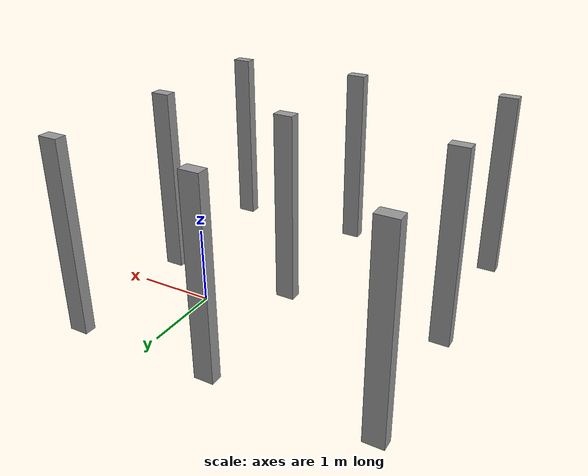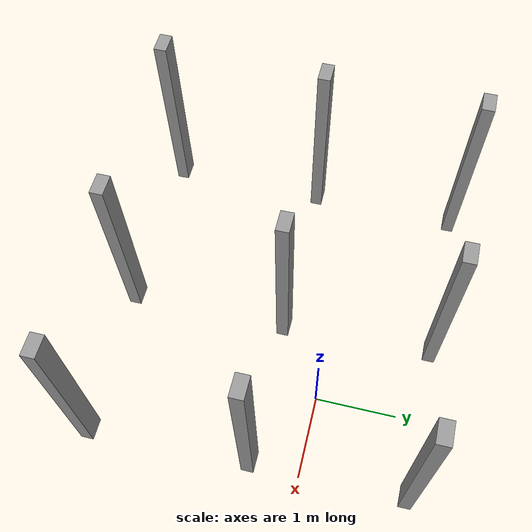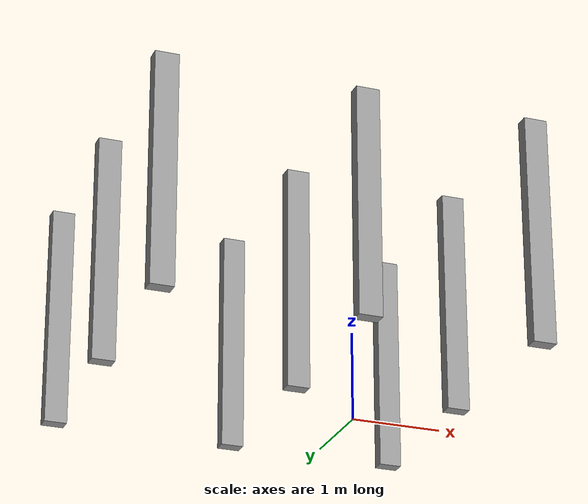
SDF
<?xml version='1.0'?>
<sdf version='1.7'>
  <model name='formation_with_obstacles'>
    <pose>-1 -0.665 0 0 -0 0</pose>
    <link name='Wall_0'>
      <collision name='Wall_0_Collision'>
        <geometry>
          <box>
            <size>0.25 0.15 2.5</size>
          </box>
        </geometry>
        <pose>0 0 1.25 0 -0 0</pose>
      </collision>
      <visual name='Wall_0_Visual'>
        <pose>0 0 1.25 0 -0 0</pose>
        <geometry>
          <box>
            <size>0.25 0.15 2.5</size>
          </box>
        </geometry>
        <material>
          <script>
            <uri>file://media/materials/scripts/gazebo.material</uri>
            <name>Gazebo/Grey</name>
          </script>
          <ambient>1 1 1 1</ambient>
        </material>
        <meta>
          <layer>0</layer>
        </meta>
      </visual>
      <pose>-1.99 0.045 0 0 -0 0</pose>
    </link>
    <link name='Wall_10'>
      <collision name='Wall_10_Collision'>
        <geometry>
          <box>
            <size>0.25 0.15 2.5</size>
          </box>
        </geometry>
        <pose>0 0 1.25 0 -0 0</pose>
      </collision>
      <visual name='Wall_10_Visual'>
        <pose>0 0 1.25 0 -0 0</pose>
        <geometry>
          <box>
            <size>0.25 0.15 2.5</size>
          </box>
        </geometry>
        <material>
          <script>
            <uri>file://media/materials/scripts/gazebo.material</uri>
            <name>Gazebo/Grey</name>
          </script>
          <ambient>1 1 1 1</ambient>
        </material>
        <meta>
          <layer>0</layer>
        </meta>
      </visual>
      <pose>2 -1.915 0 0 -0 0</pose>
    </link>
    <link name='Wall_12'>
      <collision name='Wall_12_Collision'>
        <geometry>
          <box>
            <size>0.25 0.15 2.5</size>
          </box>
        </geometry>
        <pose>0 0 1.25 0 -0 0</pose>
      </collision>
      <visual name='Wall_12_Visual'>
        <pose>0 0 1.25 0 -0 0</pose>
        <geometry>
          <box>
            <size>0.25 0.15 2.5</size>
          </box>
        </geometry>
        <material>
          <script>
            <uri>file://media/materials/scripts/gazebo.material</uri>
            <name>Gazebo/Grey</name>
          </script>
          <ambient>1 1 1 1</ambient>
        </material>
        <meta>
          <layer>0</layer>
        </meta>
      </visual>
      <pose>-1.97 1.925 0 0 -0 0</pose>
    </link>
    <link name='Wall_14'>
      <collision name='Wall_14_Collision'>
        <geometry>
          <box>
            <size>0.25 0.15 2.5</size>
          </box>
        </geometry>
        <pose>0 0 1.25 0 -0 0</pose>
      </collision>
      <visual name='Wall_14_Visual'>
        <pose>0 0 1.25 0 -0 0</pose>
        <geometry>
          <box>
            <size>0.25 0.15 2.5</size>
          </box>
        </geometry>
        <material>
          <script>
            <uri>file://media/materials/scripts/gazebo.material</uri>
            <name>Gazebo/Grey</name>
          </script>
          <ambient>1 1 1 1</ambient>
        </material>
        <meta>
          <layer>0</layer>
        </meta>
      </visual>
      <pose>0.05 1.945 0 0 -0 0</pose>
    </link>
    <link name='Wall_16'>
      <collision name='Wall_16_Collision'>
        <geometry>
          <box>
            <size>0.25 0.15 2.5</size>
          </box>
        </geometry>
        <pose>0 0 1.25 0 -0 0</pose>
      </collision>
      <visual name='Wall_16_Visual'>
        <pose>0 0 1.25 0 -0 0</pose>
        <geometry>
          <box>
            <size>0.25 0.15 2.5</size>
          </box>
        </geometry>
        <material>
          <script>
            <uri>file://media/materials/scripts/gazebo.material</uri>
            <name>Gazebo/Grey</name>
          </script>
          <ambient>1 1 1 1</ambient>
        </material>
        <meta>
          <layer>0</layer>
        </meta>
      </visual>
      <pose>1.93 1.935 0 0 -0 0</pose>
    </link>
    <link name='Wall_2'>
      <collision name='Wall_2_Collision'>
        <geometry>
          <box>
            <size>0.25 0.15 2.5</size>
          </box>
        </geometry>
        <pose>0 0 1.25 0 -0 0</pose>
      </collision>
      <visual name='Wall_2_Visual'>
        <pose>0 0 1.25 0 -0 0</pose>
        <geometry>
          <box>
            <size>0.25 0.15 2.5</size>
          </box>
        </geometry>
        <material>
          <script>
            <uri>file://media/materials/scripts/gazebo.material</uri>
            <name>Gazebo/Grey</name>
          </script>
          <ambient>1 1 1 1</ambient>
        </material>
        <meta>
          <layer>0</layer>
        </meta>
      </visual>
      <pose>-2 -1.935 0 0 -0 0</pose>
    </link>
    <link name='Wall_4'>
      <collision name='Wall_4_Collision'>
        <geometry>
          <box>
            <size>0.25 0.15 2.5</size>
          </box>
        </geometry>
        <pose>0 0 1.25 0 -0 0</pose>
      </collision>
      <visual name='Wall_4_Visual'>
        <pose>0 0 1.25 0 -0 0</pose>
        <geometry>
          <box>
            <size>0.25 0.15 2.5</size>
          </box>
        </geometry>
        <material>
          <script>
            <uri>file://media/materials/scripts/gazebo.material</uri>
            <name>Gazebo/Grey</name>
          </script>
          <ambient>1 1 1 1</ambient>
        </material>
        <meta>
          <layer>0</layer>
        </meta>
      </visual>
      <pose>0.12 0.055 0 0 -0 0</pose>
    </link>
    <link name='Wall_6'>
      <collision name='Wall_6_Collision'>
        <geometry>
          <box>
            <size>0.25 0.15 2.5</size>
          </box>
        </geometry>
        <pose>0 0 1.25 0 -0 0</pose>
      </collision>
      <visual name='Wall_6_Visual'>
        <pose>0 0 1.25 0 -0 0</pose>
        <geometry>
          <box>
            <size>0.25 0.15 2.5</size>
          </box>
        </geometry>
        <material>
          <script>
            <uri>file://media/materials/scripts/gazebo.material</uri>
            <name>Gazebo/Grey</name>
          </script>
          <ambient>1 1 1 1</ambient>
        </material>
        <meta>
          <layer>0</layer>
        </meta>
      </visual>
      <pose>0.12 -1.945 0 0 -0 0</pose>
    </link>
    <link name='Wall_8'>
      <collision name='Wall_8_Collision'>
        <geometry>
          <box>
            <size>0.25 0.15 2.5</size>
          </box>
        </geometry>
        <pose>0 0 1.25 0 -0 0</pose>
      </collision>
      <visual name='Wall_8_Visual'>
        <pose>0 0 1.25 0 -0 0</pose>
        <geometry>
          <box>
            <size>0.25 0.15 2.5</size>
          </box>
        </geometry>
        <material>
          <script>
            <uri>file://media/materials/scripts/gazebo.material</uri>
            <name>Gazebo/Grey</name>
          </script>
          <ambient>1 1 1 1</ambient>
        </material>
        <meta>
          <layer>0</layer>
        </meta>
      </visual>
      <pose>1.94 0.065 0 0 -0 0</pose>
    </link>
    <static>1</static>
  </model>
</sdf>
